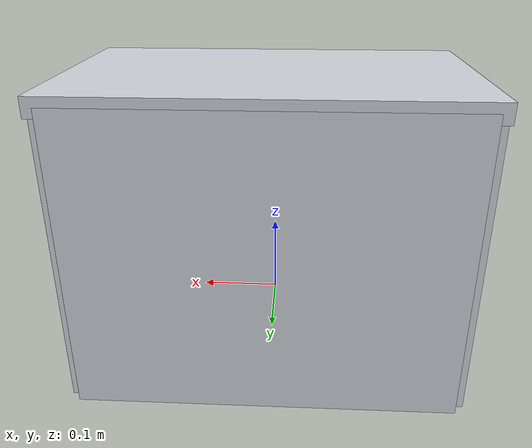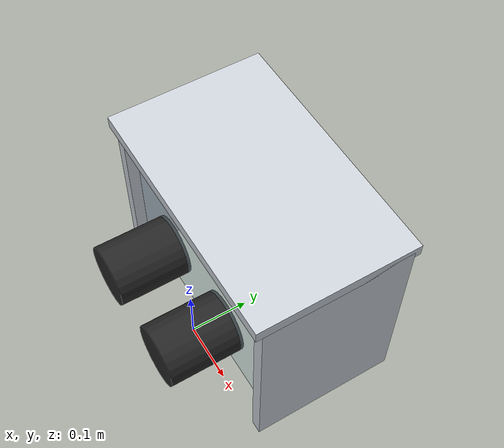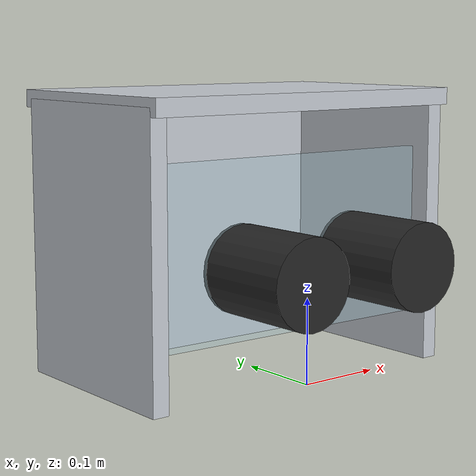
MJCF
<?xml version="1.0" encoding="utf-8"?>
<mujoco model="glovebox">
  <compiler angle="radian" autolimits="true"/>
  <default>
    <default class="body"><geom contype="1" conaffinity="1"/></default>
  </default>
  <worldbody>
    <body name="base">
      <geom type="box" size="0.20 0.01 0.16" pos="0 0.24 0.16" rgba="0.8 0.82 0.85 1" class="body"/>
      <geom type="box" size="0.01 0.12 0.16" pos="-0.20 0.12 0.16" rgba="0.8 0.82 0.85 1" class="body"/>
      <geom type="box" size="0.01 0.12 0.16" pos="0.20 0.12 0.16" rgba="0.8 0.82 0.85 1" class="body"/>
      <geom type="box" size="0.21 0.13 0.01" pos="0 0.12 0.32" rgba="0.8 0.82 0.85 1" class="body"/>
      <geom type="cylinder" size="0.05 0.06" pos="-0.08 -0.04 0.14" rgba="0.15 0.15 0.15 1" class="body" quat="0.7071068 0.7071068 0 0"/>
      <geom type="cylinder" size="0.05 0.06" pos="0.08 -0.04 0.14" rgba="0.15 0.15 0.15 1" class="body" quat="0.7071068 0.7071068 0 0"/>
      <body name="window" pos="-0.18 0.02 0.16">
        <joint name="window_joint" type="hinge" axis="0 0 1" range="0 2.0" damping="2" frictionloss="0.5"/>
  <geom type="box" size="0.18 0.005 0.10" pos="0.18 0 0" rgba="0.7 0.85 0.9 0.35" class="body"/>
      </body>
    </body>
  </worldbody>
</mujoco>
